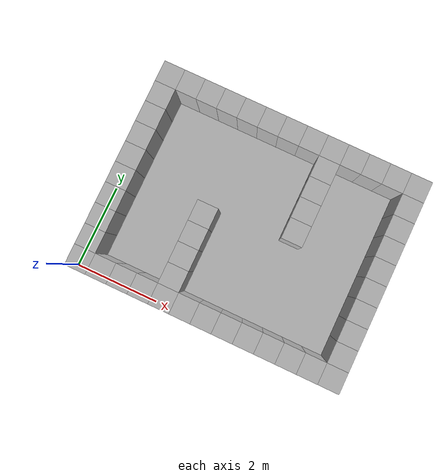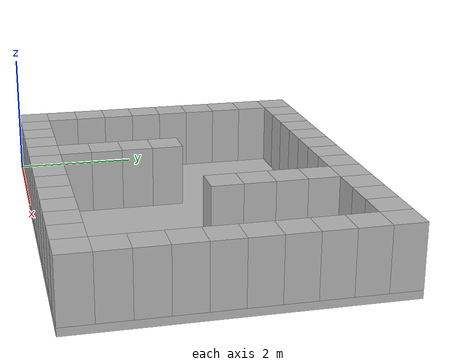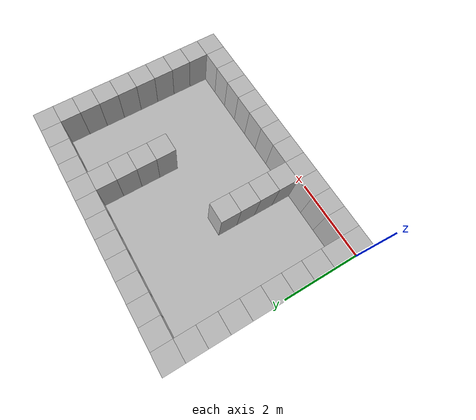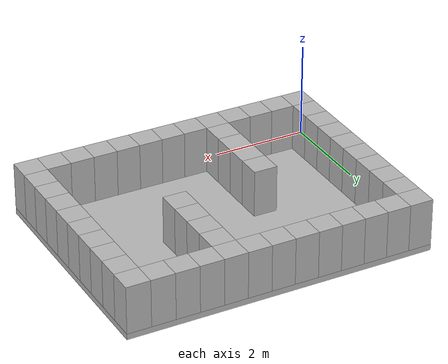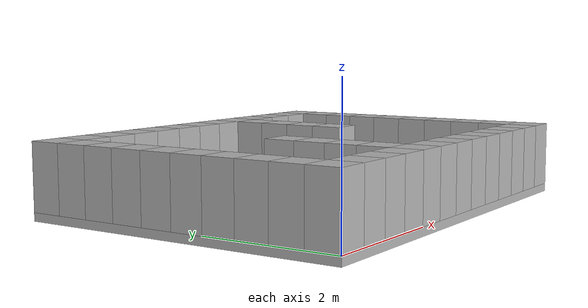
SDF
<sdf version="1.5">
  <model name="map">
    <static>1</static>
    <link name="map">
      <collision name="floor">
        <pose>3.25 2.5 -0.0625 0 0 0</pose>
        <geometry>
          <box>
            <size>6.5 5.0 0.125</size>
          </box>
        </geometry>
      </collision>
      <visual name="floor">
        <pose>3.25 2.5 -0.0625 0 0 0</pose>
        <geometry>
          <box>
            <size>6.5 5.0 0.125</size>
          </box>
        </geometry>
      </visual>
      <collision name="box_0_0">
        <pose>0.25 0.25 0.5 0 0 0</pose>
        <geometry>
          <box>
            <size>0.5 0.5 1.0</size>
          </box>
        </geometry>
      </collision>
      <visual name="box_0_0">
        <pose>0.25 0.25 0.5 0 0 0</pose>
        <geometry>
          <box>
            <size>0.5 0.5 1.0</size>
          </box>
        </geometry>
      </visual>
      <collision name="box_0_1">
        <pose>0.25 0.75 0.5 0 0 0</pose>
        <geometry>
          <box>
            <size>0.5 0.5 1.0</size>
          </box>
        </geometry>
      </collision>
      <visual name="box_0_1">
        <pose>0.25 0.75 0.5 0 0 0</pose>
        <geometry>
          <box>
            <size>0.5 0.5 1.0</size>
          </box>
        </geometry>
      </visual>
      <collision name="box_0_2">
        <pose>0.25 1.25 0.5 0 0 0</pose>
        <geometry>
          <box>
            <size>0.5 0.5 1.0</size>
          </box>
        </geometry>
      </collision>
      <visual name="box_0_2">
        <pose>0.25 1.25 0.5 0 0 0</pose>
        <geometry>
          <box>
            <size>0.5 0.5 1.0</size>
          </box>
        </geometry>
      </visual>
      <collision name="box_0_3">
        <pose>0.25 1.75 0.5 0 0 0</pose>
        <geometry>
          <box>
            <size>0.5 0.5 1.0</size>
          </box>
        </geometry>
      </collision>
      <visual name="box_0_3">
        <pose>0.25 1.75 0.5 0 0 0</pose>
        <geometry>
          <box>
            <size>0.5 0.5 1.0</size>
          </box>
        </geometry>
      </visual>
      <collision name="box_0_4">
        <pose>0.25 2.25 0.5 0 0 0</pose>
        <geometry>
          <box>
            <size>0.5 0.5 1.0</size>
          </box>
        </geometry>
      </collision>
      <visual name="box_0_4">
        <pose>0.25 2.25 0.5 0 0 0</pose>
        <geometry>
          <box>
            <size>0.5 0.5 1.0</size>
          </box>
        </geometry>
      </visual>
      <collision name="box_0_5">
        <pose>0.25 2.75 0.5 0 0 0</pose>
        <geometry>
          <box>
            <size>0.5 0.5 1.0</size>
          </box>
        </geometry>
      </collision>
      <visual name="box_0_5">
        <pose>0.25 2.75 0.5 0 0 0</pose>
        <geometry>
          <box>
            <size>0.5 0.5 1.0</size>
          </box>
        </geometry>
      </visual>
      <collision name="box_0_6">
        <pose>0.25 3.25 0.5 0 0 0</pose>
        <geometry>
          <box>
            <size>0.5 0.5 1.0</size>
          </box>
        </geometry>
      </collision>
      <visual name="box_0_6">
        <pose>0.25 3.25 0.5 0 0 0</pose>
        <geometry>
          <box>
            <size>0.5 0.5 1.0</size>
          </box>
        </geometry>
      </visual>
      <collision name="box_0_7">
        <pose>0.25 3.75 0.5 0 0 0</pose>
        <geometry>
          <box>
            <size>0.5 0.5 1.0</size>
          </box>
        </geometry>
      </collision>
      <visual name="box_0_7">
        <pose>0.25 3.75 0.5 0 0 0</pose>
        <geometry>
          <box>
            <size>0.5 0.5 1.0</size>
          </box>
        </geometry>
      </visual>
      <collision name="box_0_8">
        <pose>0.25 4.25 0.5 0 0 0</pose>
        <geometry>
          <box>
            <size>0.5 0.5 1.0</size>
          </box>
        </geometry>
      </collision>
      <visual name="box_0_8">
        <pose>0.25 4.25 0.5 0 0 0</pose>
        <geometry>
          <box>
            <size>0.5 0.5 1.0</size>
          </box>
        </geometry>
      </visual>
      <collision name="box_0_9">
        <pose>0.25 4.75 0.5 0 0 0</pose>
        <geometry>
          <box>
            <size>0.5 0.5 1.0</size>
          </box>
        </geometry>
      </collision>
      <visual name="box_0_9">
        <pose>0.25 4.75 0.5 0 0 0</pose>
        <geometry>
          <box>
            <size>0.5 0.5 1.0</size>
          </box>
        </geometry>
      </visual>
      <collision name="box_1_0">
        <pose>0.75 0.25 0.5 0 0 0</pose>
        <geometry>
          <box>
            <size>0.5 0.5 1.0</size>
          </box>
        </geometry>
      </collision>
      <visual name="box_1_0">
        <pose>0.75 0.25 0.5 0 0 0</pose>
        <geometry>
          <box>
            <size>0.5 0.5 1.0</size>
          </box>
        </geometry>
      </visual>
      <collision name="box_1_9">
        <pose>0.75 4.75 0.5 0 0 0</pose>
        <geometry>
          <box>
            <size>0.5 0.5 1.0</size>
          </box>
        </geometry>
      </collision>
      <visual name="box_1_9">
        <pose>0.75 4.75 0.5 0 0 0</pose>
        <geometry>
          <box>
            <size>0.5 0.5 1.0</size>
          </box>
        </geometry>
      </visual>
      <collision name="box_2_0">
        <pose>1.25 0.25 0.5 0 0 0</pose>
        <geometry>
          <box>
            <size>0.5 0.5 1.0</size>
          </box>
        </geometry>
      </collision>
      <visual name="box_2_0">
        <pose>1.25 0.25 0.5 0 0 0</pose>
        <geometry>
          <box>
            <size>0.5 0.5 1.0</size>
          </box>
        </geometry>
      </visual>
      <collision name="box_2_9">
        <pose>1.25 4.75 0.5 0 0 0</pose>
        <geometry>
          <box>
            <size>0.5 0.5 1.0</size>
          </box>
        </geometry>
      </collision>
      <visual name="box_2_9">
        <pose>1.25 4.75 0.5 0 0 0</pose>
        <geometry>
          <box>
            <size>0.5 0.5 1.0</size>
          </box>
        </geometry>
      </visual>
      <collision name="box_3_0">
        <pose>1.75 0.25 0.5 0 0 0</pose>
        <geometry>
          <box>
            <size>0.5 0.5 1.0</size>
          </box>
        </geometry>
      </collision>
      <visual name="box_3_0">
        <pose>1.75 0.25 0.5 0 0 0</pose>
        <geometry>
          <box>
            <size>0.5 0.5 1.0</size>
          </box>
        </geometry>
      </visual>
      <collision name="box_3_9">
        <pose>1.75 4.75 0.5 0 0 0</pose>
        <geometry>
          <box>
            <size>0.5 0.5 1.0</size>
          </box>
        </geometry>
      </collision>
      <visual name="box_3_9">
        <pose>1.75 4.75 0.5 0 0 0</pose>
        <geometry>
          <box>
            <size>0.5 0.5 1.0</size>
          </box>
        </geometry>
      </visual>
      <collision name="box_4_0">
        <pose>2.25 0.25 0.5 0 0 0</pose>
        <geometry>
          <box>
            <size>0.5 0.5 1.0</size>
          </box>
        </geometry>
      </collision>
      <visual name="box_4_0">
        <pose>2.25 0.25 0.5 0 0 0</pose>
        <geometry>
          <box>
            <size>0.5 0.5 1.0</size>
          </box>
        </geometry>
      </visual>
      <collision name="box_4_1">
        <pose>2.25 0.75 0.5 0 0 0</pose>
        <geometry>
          <box>
            <size>0.5 0.5 1.0</size>
          </box>
        </geometry>
      </collision>
      <visual name="box_4_1">
        <pose>2.25 0.75 0.5 0 0 0</pose>
        <geometry>
          <box>
            <size>0.5 0.5 1.0</size>
          </box>
        </geometry>
      </visual>
      <collision name="box_4_2">
        <pose>2.25 1.25 0.5 0 0 0</pose>
        <geometry>
          <box>
            <size>0.5 0.5 1.0</size>
          </box>
        </geometry>
      </collision>
      <visual name="box_4_2">
        <pose>2.25 1.25 0.5 0 0 0</pose>
        <geometry>
          <box>
            <size>0.5 0.5 1.0</size>
          </box>
        </geometry>
      </visual>
      <collision name="box_4_3">
        <pose>2.25 1.75 0.5 0 0 0</pose>
        <geometry>
          <box>
            <size>0.5 0.5 1.0</size>
          </box>
        </geometry>
      </collision>
      <visual name="box_4_3">
        <pose>2.25 1.75 0.5 0 0 0</pose>
        <geometry>
          <box>
            <size>0.5 0.5 1.0</size>
          </box>
        </geometry>
      </visual>
      <collision name="box_4_4">
        <pose>2.25 2.25 0.5 0 0 0</pose>
        <geometry>
          <box>
            <size>0.5 0.5 1.0</size>
          </box>
        </geometry>
      </collision>
      <visual name="box_4_4">
        <pose>2.25 2.25 0.5 0 0 0</pose>
        <geometry>
          <box>
            <size>0.5 0.5 1.0</size>
          </box>
        </geometry>
      </visual>
      <collision name="box_4_9">
        <pose>2.25 4.75 0.5 0 0 0</pose>
        <geometry>
          <box>
            <size>0.5 0.5 1.0</size>
          </box>
        </geometry>
      </collision>
      <visual name="box_4_9">
        <pose>2.25 4.75 0.5 0 0 0</pose>
        <geometry>
          <box>
            <size>0.5 0.5 1.0</size>
          </box>
        </geometry>
      </visual>
      <collision name="box_5_0">
        <pose>2.75 0.25 0.5 0 0 0</pose>
        <geometry>
          <box>
            <size>0.5 0.5 1.0</size>
          </box>
        </geometry>
      </collision>
      <visual name="box_5_0">
        <pose>2.75 0.25 0.5 0 0 0</pose>
        <geometry>
          <box>
            <size>0.5 0.5 1.0</size>
          </box>
        </geometry>
      </visual>
      <collision name="box_5_9">
        <pose>2.75 4.75 0.5 0 0 0</pose>
        <geometry>
          <box>
            <size>0.5 0.5 1.0</size>
          </box>
        </geometry>
      </collision>
      <visual name="box_5_9">
        <pose>2.75 4.75 0.5 0 0 0</pose>
        <geometry>
          <box>
            <size>0.5 0.5 1.0</size>
          </box>
        </geometry>
      </visual>
      <collision name="box_6_0">
        <pose>3.25 0.25 0.5 0 0 0</pose>
        <geometry>
          <box>
            <size>0.5 0.5 1.0</size>
          </box>
        </geometry>
      </collision>
      <visual name="box_6_0">
        <pose>3.25 0.25 0.5 0 0 0</pose>
        <geometry>
          <box>
            <size>0.5 0.5 1.0</size>
          </box>
        </geometry>
      </visual>
      <collision name="box_6_9">
        <pose>3.25 4.75 0.5 0 0 0</pose>
        <geometry>
          <box>
            <size>0.5 0.5 1.0</size>
          </box>
        </geometry>
      </collision>
      <visual name="box_6_9">
        <pose>3.25 4.75 0.5 0 0 0</pose>
        <geometry>
          <box>
            <size>0.5 0.5 1.0</size>
          </box>
        </geometry>
      </visual>
      <collision name="box_7_0">
        <pose>3.75 0.25 0.5 0 0 0</pose>
        <geometry>
          <box>
            <size>0.5 0.5 1.0</size>
          </box>
        </geometry>
      </collision>
      <visual name="box_7_0">
        <pose>3.75 0.25 0.5 0 0 0</pose>
        <geometry>
          <box>
            <size>0.5 0.5 1.0</size>
          </box>
        </geometry>
      </visual>
      <collision name="box_7_9">
        <pose>3.75 4.75 0.5 0 0 0</pose>
        <geometry>
          <box>
            <size>0.5 0.5 1.0</size>
          </box>
        </geometry>
      </collision>
      <visual name="box_7_9">
        <pose>3.75 4.75 0.5 0 0 0</pose>
        <geometry>
          <box>
            <size>0.5 0.5 1.0</size>
          </box>
        </geometry>
      </visual>
      <collision name="box_8_0">
        <pose>4.25 0.25 0.5 0 0 0</pose>
        <geometry>
          <box>
            <size>0.5 0.5 1.0</size>
          </box>
        </geometry>
      </collision>
      <visual name="box_8_0">
        <pose>4.25 0.25 0.5 0 0 0</pose>
        <geometry>
          <box>
            <size>0.5 0.5 1.0</size>
          </box>
        </geometry>
      </visual>
      <collision name="box_8_5">
        <pose>4.25 2.75 0.5 0 0 0</pose>
        <geometry>
          <box>
            <size>0.5 0.5 1.0</size>
          </box>
        </geometry>
      </collision>
      <visual name="box_8_5">
        <pose>4.25 2.75 0.5 0 0 0</pose>
        <geometry>
          <box>
            <size>0.5 0.5 1.0</size>
          </box>
        </geometry>
      </visual>
      <collision name="box_8_6">
        <pose>4.25 3.25 0.5 0 0 0</pose>
        <geometry>
          <box>
            <size>0.5 0.5 1.0</size>
          </box>
        </geometry>
      </collision>
      <visual name="box_8_6">
        <pose>4.25 3.25 0.5 0 0 0</pose>
        <geometry>
          <box>
            <size>0.5 0.5 1.0</size>
          </box>
        </geometry>
      </visual>
      <collision name="box_8_7">
        <pose>4.25 3.75 0.5 0 0 0</pose>
        <geometry>
          <box>
            <size>0.5 0.5 1.0</size>
          </box>
        </geometry>
      </collision>
      <visual name="box_8_7">
        <pose>4.25 3.75 0.5 0 0 0</pose>
        <geometry>
          <box>
            <size>0.5 0.5 1.0</size>
          </box>
        </geometry>
      </visual>
      <collision name="box_8_8">
        <pose>4.25 4.25 0.5 0 0 0</pose>
        <geometry>
          <box>
            <size>0.5 0.5 1.0</size>
          </box>
        </geometry>
      </collision>
      <visual name="box_8_8">
        <pose>4.25 4.25 0.5 0 0 0</pose>
        <geometry>
          <box>
            <size>0.5 0.5 1.0</size>
          </box>
        </geometry>
      </visual>
      <collision name="box_8_9">
        <pose>4.25 4.75 0.5 0 0 0</pose>
        <geometry>
          <box>
            <size>0.5 0.5 1.0</size>
          </box>
        </geometry>
      </collision>
      <visual name="box_8_9">
        <pose>4.25 4.75 0.5 0 0 0</pose>
        <geometry>
          <box>
            <size>0.5 0.5 1.0</size>
          </box>
        </geometry>
      </visual>
      <collision name="box_9_0">
        <pose>4.75 0.25 0.5 0 0 0</pose>
        <geometry>
          <box>
            <size>0.5 0.5 1.0</size>
          </box>
        </geometry>
      </collision>
      <visual name="box_9_0">
        <pose>4.75 0.25 0.5 0 0 0</pose>
        <geometry>
          <box>
            <size>0.5 0.5 1.0</size>
          </box>
        </geometry>
      </visual>
      <collision name="box_9_9">
        <pose>4.75 4.75 0.5 0 0 0</pose>
        <geometry>
          <box>
            <size>0.5 0.5 1.0</size>
          </box>
        </geometry>
      </collision>
      <visual name="box_9_9">
        <pose>4.75 4.75 0.5 0 0 0</pose>
        <geometry>
          <box>
            <size>0.5 0.5 1.0</size>
          </box>
        </geometry>
      </visual>
      <collision name="box_10_0">
        <pose>5.25 0.25 0.5 0 0 0</pose>
        <geometry>
          <box>
            <size>0.5 0.5 1.0</size>
          </box>
        </geometry>
      </collision>
      <visual name="box_10_0">
        <pose>5.25 0.25 0.5 0 0 0</pose>
        <geometry>
          <box>
            <size>0.5 0.5 1.0</size>
          </box>
        </geometry>
      </visual>
      <collision name="box_10_9">
        <pose>5.25 4.75 0.5 0 0 0</pose>
        <geometry>
          <box>
            <size>0.5 0.5 1.0</size>
          </box>
        </geometry>
      </collision>
      <visual name="box_10_9">
        <pose>5.25 4.75 0.5 0 0 0</pose>
        <geometry>
          <box>
            <size>0.5 0.5 1.0</size>
          </box>
        </geometry>
      </visual>
      <collision name="box_11_0">
        <pose>5.75 0.25 0.5 0 0 0</pose>
        <geometry>
          <box>
            <size>0.5 0.5 1.0</size>
          </box>
        </geometry>
      </collision>
      <visual name="box_11_0">
        <pose>5.75 0.25 0.5 0 0 0</pose>
        <geometry>
          <box>
            <size>0.5 0.5 1.0</size>
          </box>
        </geometry>
      </visual>
      <collision name="box_11_9">
        <pose>5.75 4.75 0.5 0 0 0</pose>
        <geometry>
          <box>
            <size>0.5 0.5 1.0</size>
          </box>
        </geometry>
      </collision>
      <visual name="box_11_9">
        <pose>5.75 4.75 0.5 0 0 0</pose>
        <geometry>
          <box>
            <size>0.5 0.5 1.0</size>
          </box>
        </geometry>
      </visual>
      <collision name="box_12_0">
        <pose>6.25 0.25 0.5 0 0 0</pose>
        <geometry>
          <box>
            <size>0.5 0.5 1.0</size>
          </box>
        </geometry>
      </collision>
      <visual name="box_12_0">
        <pose>6.25 0.25 0.5 0 0 0</pose>
        <geometry>
          <box>
            <size>0.5 0.5 1.0</size>
          </box>
        </geometry>
      </visual>
      <collision name="box_12_1">
        <pose>6.25 0.75 0.5 0 0 0</pose>
        <geometry>
          <box>
            <size>0.5 0.5 1.0</size>
          </box>
        </geometry>
      </collision>
      <visual name="box_12_1">
        <pose>6.25 0.75 0.5 0 0 0</pose>
        <geometry>
          <box>
            <size>0.5 0.5 1.0</size>
          </box>
        </geometry>
      </visual>
      <collision name="box_12_2">
        <pose>6.25 1.25 0.5 0 0 0</pose>
        <geometry>
          <box>
            <size>0.5 0.5 1.0</size>
          </box>
        </geometry>
      </collision>
      <visual name="box_12_2">
        <pose>6.25 1.25 0.5 0 0 0</pose>
        <geometry>
          <box>
            <size>0.5 0.5 1.0</size>
          </box>
        </geometry>
      </visual>
      <collision name="box_12_3">
        <pose>6.25 1.75 0.5 0 0 0</pose>
        <geometry>
          <box>
            <size>0.5 0.5 1.0</size>
          </box>
        </geometry>
      </collision>
      <visual name="box_12_3">
        <pose>6.25 1.75 0.5 0 0 0</pose>
        <geometry>
          <box>
            <size>0.5 0.5 1.0</size>
          </box>
        </geometry>
      </visual>
      <collision name="box_12_4">
        <pose>6.25 2.25 0.5 0 0 0</pose>
        <geometry>
          <box>
            <size>0.5 0.5 1.0</size>
          </box>
        </geometry>
      </collision>
      <visual name="box_12_4">
        <pose>6.25 2.25 0.5 0 0 0</pose>
        <geometry>
          <box>
            <size>0.5 0.5 1.0</size>
          </box>
        </geometry>
      </visual>
      <collision name="box_12_5">
        <pose>6.25 2.75 0.5 0 0 0</pose>
        <geometry>
          <box>
            <size>0.5 0.5 1.0</size>
          </box>
        </geometry>
      </collision>
      <visual name="box_12_5">
        <pose>6.25 2.75 0.5 0 0 0</pose>
        <geometry>
          <box>
            <size>0.5 0.5 1.0</size>
          </box>
        </geometry>
      </visual>
      <collision name="box_12_6">
        <pose>6.25 3.25 0.5 0 0 0</pose>
        <geometry>
          <box>
            <size>0.5 0.5 1.0</size>
          </box>
        </geometry>
      </collision>
      <visual name="box_12_6">
        <pose>6.25 3.25 0.5 0 0 0</pose>
        <geometry>
          <box>
            <size>0.5 0.5 1.0</size>
          </box>
        </geometry>
      </visual>
      <collision name="box_12_7">
        <pose>6.25 3.75 0.5 0 0 0</pose>
        <geometry>
          <box>
            <size>0.5 0.5 1.0</size>
          </box>
        </geometry>
      </collision>
      <visual name="box_12_7">
        <pose>6.25 3.75 0.5 0 0 0</pose>
        <geometry>
          <box>
            <size>0.5 0.5 1.0</size>
          </box>
        </geometry>
      </visual>
      <collision name="box_12_8">
        <pose>6.25 4.25 0.5 0 0 0</pose>
        <geometry>
          <box>
            <size>0.5 0.5 1.0</size>
          </box>
        </geometry>
      </collision>
      <visual name="box_12_8">
        <pose>6.25 4.25 0.5 0 0 0</pose>
        <geometry>
          <box>
            <size>0.5 0.5 1.0</size>
          </box>
        </geometry>
      </visual>
      <collision name="box_12_9">
        <pose>6.25 4.75 0.5 0 0 0</pose>
        <geometry>
          <box>
            <size>0.5 0.5 1.0</size>
          </box>
        </geometry>
      </collision>
      <visual name="box_12_9">
        <pose>6.25 4.75 0.5 0 0 0</pose>
        <geometry>
          <box>
            <size>0.5 0.5 1.0</size>
          </box>
        </geometry>
      </visual>
    </link>
  </model>
</sdf>
